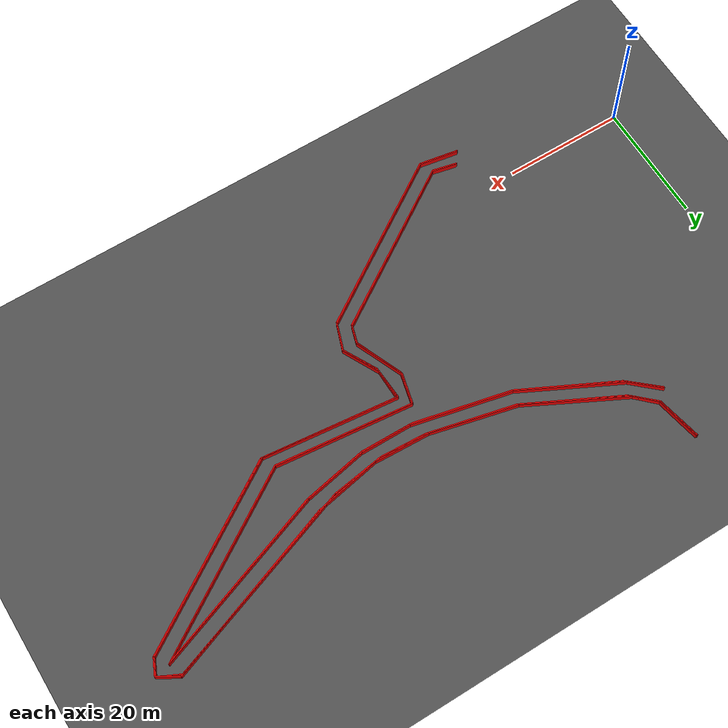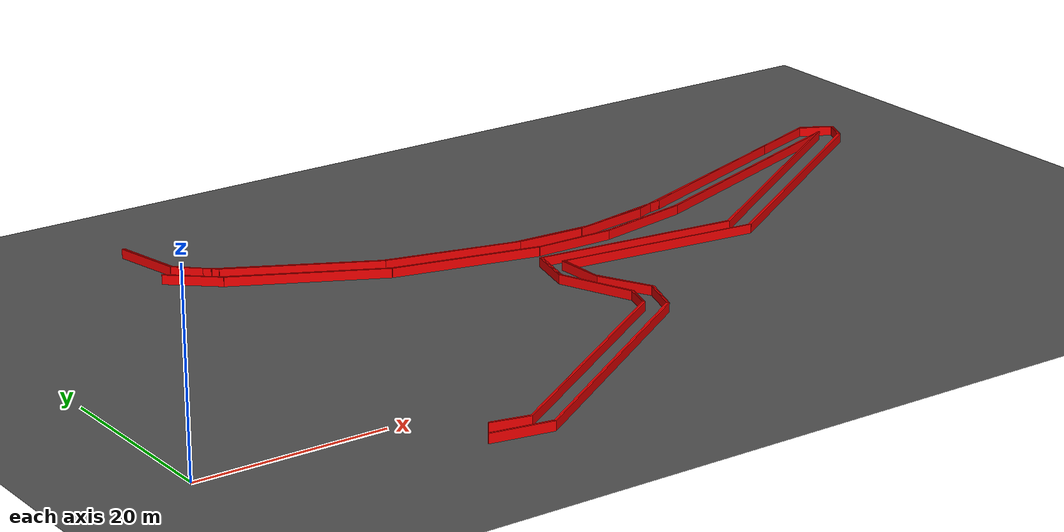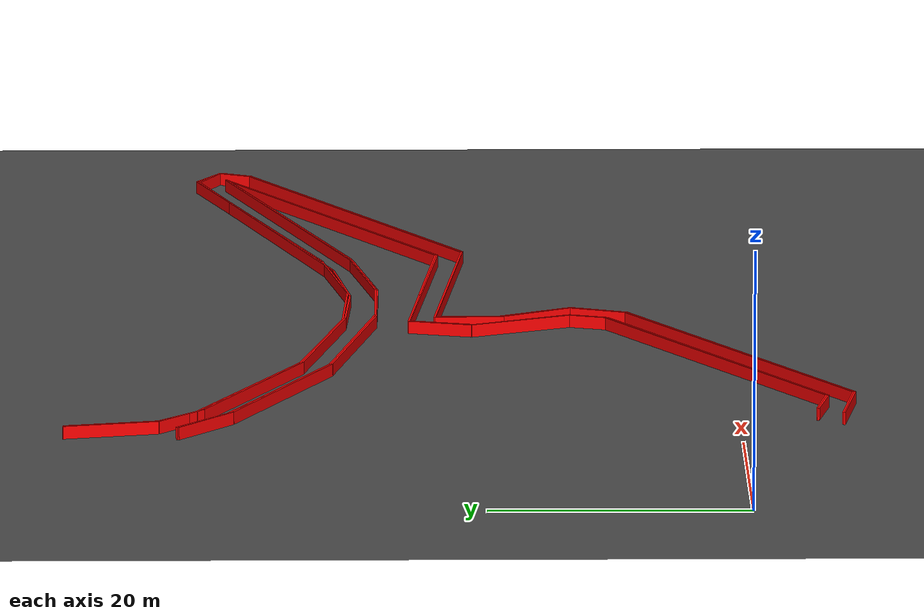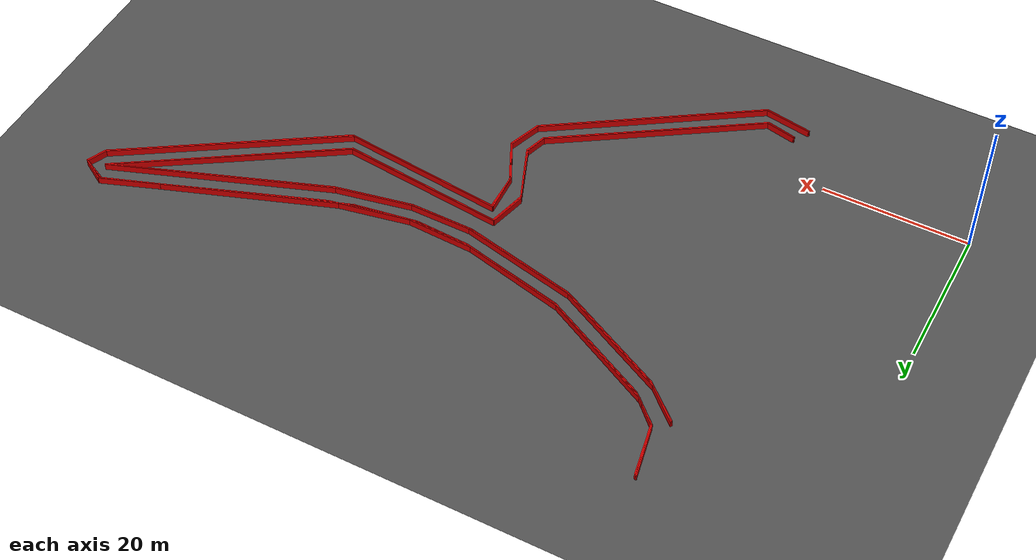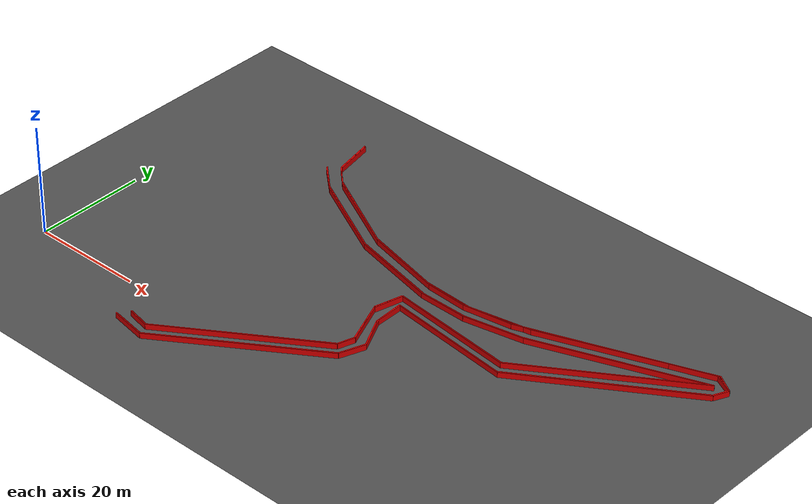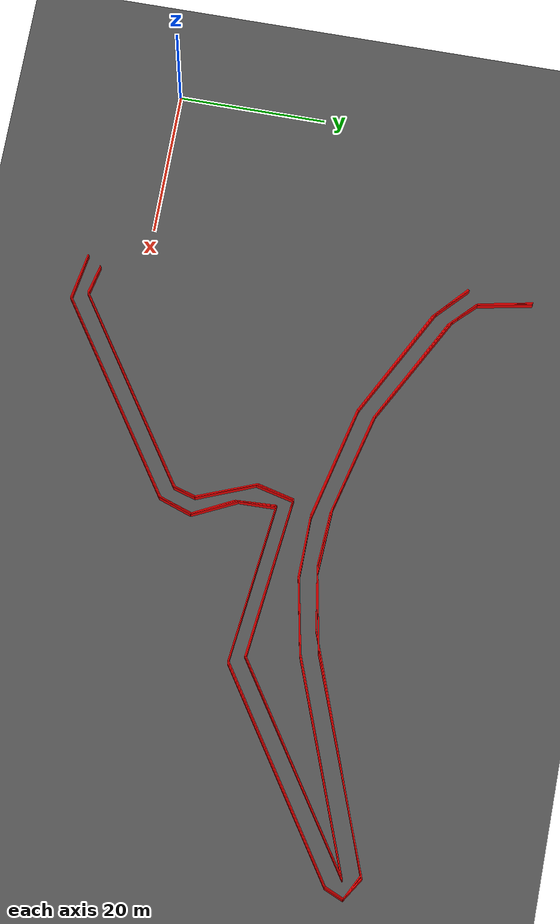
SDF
<sdf version="1.6">
 <world name="track_world">
  <model name="ground_plane">
   <static>true</static>
   <link name="link">
    <collision name="collision">
     <geometry><plane><normal>0 0 1</normal><size>1000 1000</size></plane></geometry>
    </collision>
    <visual name="visual">
     <geometry><plane><normal>0 0 1</normal><size>1000 1000</size></plane></geometry>
     <material><ambient>0.3 0.3 0.3 1</ambient><diffuse>0.3 0.3 0.3 1</diffuse></material>
    </visual>
   </link>
  </model>
  <model name="wall_11">
   <static>true</static>
   <pose>28.64477616560203 -8.553099996878526 0.5 0 0 -0.17349572896278118</pose>
   <link name="link">
    <visual name="visual">
     <geometry><box><size>6.600023978683713 0.15 1.0</size></box></geometry>
     <material><ambient>1 0 0 1</ambient><diffuse>1 0 0 1</diffuse></material>
    </visual>
    <collision name="collision">
     <geometry><box><size>6.600023978683713 0.15 1.0</size></box></geometry>
    </collision>
   </link>
  </model>
  <model name="wall_12">
   <static>true</static>
   <pose>44.86361616560203 -0.5777199968785247 0.5 0 0 0.5826166592180386</pose>
   <link name="link">
    <visual name="visual">
     <geometry><box><size>31.06100448854802 0.15 1.0</size></box></geometry>
     <material><ambient>1 0 0 1</ambient><diffuse>1 0 0 1</diffuse></material>
    </visual>
    <collision name="collision">
     <geometry><box><size>31.06100448854802 0.15 1.0</size></box></geometry>
    </collision>
   </link>
  </model>
  <model name="wall_13">
   <static>true</static>
   <pose>58.63622616560203 10.212500003121477 0.5 0 0 1.2268272070715356</pose>
   <link name="link">
    <visual name="visual">
     <geometry><box><size>4.769733873708263 0.15 1.0</size></box></geometry>
     <material><ambient>1 0 0 1</ambient><diffuse>1 0 0 1</diffuse></material>
    </visual>
    <collision name="collision">
     <geometry><box><size>4.769733873708263 0.15 1.0</size></box></geometry>
    </collision>
   </link>
  </model>
  <model name="wall_14">
   <static>true</static>
   <pose>57.99953616560203 15.406550003121474 0.5 0 0 2.0253117695762928</pose>
   <link name="link">
    <visual name="visual">
     <geometry><box><size>6.564197595837584 0.15 1.0</size></box></geometry>
     <material><ambient>1 0 0 1</ambient><diffuse>1 0 0 1</diffuse></material>
    </visual>
    <collision name="collision">
     <geometry><box><size>6.564197595837584 0.15 1.0</size></box></geometry>
    </collision>
   </link>
  </model>
  <model name="wall_15">
   <static>true</static>
   <pose>56.52509616560203 20.86868000312147 0.5 0 0 1.5841288700890421</pose>
   <link name="link">
    <visual name="visual">
     <geometry><box><size>5.0269467801439855 0.15 1.0</size></box></geometry>
     <material><ambient>1 0 0 1</ambient><diffuse>1 0 0 1</diffuse></material>
    </visual>
    <collision name="collision">
     <geometry><box><size>5.0269467801439855 0.15 1.0</size></box></geometry>
    </collision>
   </link>
  </model>
  <model name="wall_16">
   <static>true</static>
   <pose>67.58339616560203 22.17557000312147 0.5 0 0 -0.1083355006357768</pose>
   <link name="link">
    <visual name="visual">
     <geometry><box><size>22.314439587468907 0.15 1.0</size></box></geometry>
     <material><ambient>1 0 0 1</ambient><diffuse>1 0 0 1</diffuse></material>
    </visual>
    <collision name="collision">
     <geometry><box><size>22.314439587468907 0.15 1.0</size></box></geometry>
    </collision>
   </link>
  </model>
  <model name="wall_17">
   <static>true</static>
   <pose>92.38079616560202 29.782340003121476 0.5 0 0 0.5714610434064565</pose>
   <link name="link">
    <visual name="visual">
     <geometry><box><size>32.58922875092321 0.15 1.0</size></box></geometry>
     <material><ambient>1 0 0 1</ambient><diffuse>1 0 0 1</diffuse></material>
    </visual>
    <collision name="collision">
     <geometry><box><size>32.58922875092321 0.15 1.0</size></box></geometry>
    </collision>
   </link>
  </model>
  <model name="wall_18">
   <static>true</static>
   <pose>106.65605616560202 39.86885000312147 0.5 0 0 1.150132977661859</pose>
   <link name="link">
    <visual name="visual">
     <geometry><box><size>2.789996798062673 0.15 1.0</size></box></geometry>
     <material><ambient>1 0 0 1</ambient><diffuse>1 0 0 1</diffuse></material>
    </visual>
    <collision name="collision">
     <geometry><box><size>2.789996798062673 0.15 1.0</size></box></geometry>
    </collision>
   </link>
  </model>
  <model name="wall_19">
   <static>true</static>
   <pose>105.65075616560202 42.114020003121475 0.5 0 0 2.5887514319972516</pose>
   <link name="link">
    <visual name="visual">
     <geometry><box><size>3.701300476859458 0.15 1.0</size></box></geometry>
     <material><ambient>1 0 0 1</ambient><diffuse>1 0 0 1</diffuse></material>
    </visual>
    <collision name="collision">
     <geometry><box><size>3.701300476859458 0.15 1.0</size></box></geometry>
    </collision>
   </link>
  </model>
  <model name="wall_20">
   <static>true</static>
   <pose>89.76701616560203 37.79123000312148 0.5 0 0 -2.7871921354468716</pose>
   <link name="link">
    <visual name="visual">
     <geometry><box><size>30.51383137459471 0.15 1.0</size></box></geometry>
     <material><ambient>1 0 0 1</ambient><diffuse>1 0 0 1</diffuse></material>
    </visual>
    <collision name="collision">
     <geometry><box><size>30.51383137459471 0.15 1.0</size></box></geometry>
    </collision>
   </link>
  </model>
  <model name="wall_21">
   <static>true</static>
   <pose>70.02962616560202 31.457840003121476 0.5 0 0 -2.952520326028613</pose>
   <link name="link">
    <visual name="visual">
     <geometry><box><size>11.054237435571926 0.15 1.0</size></box></geometry>
     <material><ambient>1 0 0 1</ambient><diffuse>1 0 0 1</diffuse></material>
    </visual>
    <collision name="collision">
     <geometry><box><size>11.054237435571926 0.15 1.0</size></box></geometry>
    </collision>
   </link>
  </model>
  <model name="wall_22">
   <static>true</static>
   <pose>60.07715616560203 30.620090003121476 0.5 0 0 3.0971774383428827</pose>
   <link name="link">
    <visual name="visual">
     <geometry><box><size>9.056631591513487 0.15 1.0</size></box></geometry>
     <material><ambient>1 0 0 1</ambient><diffuse>1 0 0 1</diffuse></material>
    </visual>
    <collision name="collision">
     <geometry><box><size>9.056631591513487 0.15 1.0</size></box></geometry>
    </collision>
   </link>
  </model>
  <model name="wall_23">
   <static>true</static>
   <pose>48.58322616560203 32.496650003121474 0.5 0 0 2.9056840365213215</pose>
   <link name="link">
    <visual name="visual">
     <geometry><box><size>14.337268283240004 0.15 1.0</size></box></geometry>
     <material><ambient>1 0 0 1</ambient><diffuse>1 0 0 1</diffuse></material>
    </visual>
    <collision name="collision">
     <geometry><box><size>14.337268283240004 0.15 1.0</size></box></geometry>
    </collision>
   </link>
  </model>
  <model name="wall_24">
   <static>true</static>
   <pose>33.972866165602035 38.159840003121474 0.5 0 0 2.6605554932996562</pose>
   <link name="link">
    <visual name="visual">
     <geometry><box><size>17.23665280899978 0.15 1.0</size></box></geometry>
     <material><ambient>1 0 0 1</ambient><diffuse>1 0 0 1</diffuse></material>
    </visual>
    <collision name="collision">
     <geometry><box><size>17.23665280899978 0.15 1.0</size></box></geometry>
    </collision>
   </link>
  </model>
  <model name="wall_25">
   <static>true</static>
   <pose>24.891656165602033 43.588460003121476 0.5 0 0 2.356194490192345</pose>
   <link name="link">
    <visual name="visual">
     <geometry><box><size>4.075565496860532 0.15 1.0</size></box></geometry>
     <material><ambient>1 0 0 1</ambient><diffuse>1 0 0 1</diffuse></material>
    </visual>
    <collision name="collision">
     <geometry><box><size>4.075565496860532 0.15 1.0</size></box></geometry>
    </collision>
   </link>
  </model>
  <model name="wall_26">
   <static>true</static>
   <pose>22.74701616560203 48.681980003121474 0.5 0 0 1.7611248664868042</pose>
   <link name="link">
    <visual name="visual">
     <geometry><box><size>7.439521885766578 0.15 1.0</size></box></geometry>
     <material><ambient>1 0 0 1</ambient><diffuse>1 0 0 1</diffuse></material>
    </visual>
    <collision name="collision">
     <geometry><box><size>7.439521885766578 0.15 1.0</size></box></geometry>
    </collision>
   </link>
  </model>
  <model name="wall_33">
   <static>true</static>
   <pose>22.57946616560203 48.715490003121474 0.5 0 0 -1.3734007669450154</pose>
   <link name="link">
    <visual name="visual">
     <geometry><box><size>7.518198331621738 0.15 1.0</size></box></geometry>
     <material><ambient>1 0 0 1</ambient><diffuse>1 0 0 1</diffuse></material>
    </visual>
    <collision name="collision">
     <geometry><box><size>7.518198331621738 0.15 1.0</size></box></geometry>
    </collision>
   </link>
  </model>
  <model name="wall_34">
   <static>true</static>
   <pose>25.12622616560203 43.32038000312148 0.5 0 0 -0.7568345055586886</pose>
   <link name="link">
    <visual name="visual">
     <geometry><box><size>4.978011728270633 0.15 1.0</size></box></geometry>
     <material><ambient>1 0 0 1</ambient><diffuse>1 0 0 1</diffuse></material>
    </visual>
    <collision name="collision">
     <geometry><box><size>4.978011728270633 0.15 1.0</size></box></geometry>
    </collision>
   </link>
  </model>
  <model name="wall_35">
   <static>true</static>
   <pose>34.37498616560203 37.79123000312148 0.5 0 0 -0.47439988279190753</pose>
   <link name="link">
    <visual name="visual">
     <geometry><box><size>16.72548520408302 0.15 1.0</size></box></geometry>
     <material><ambient>1 0 0 1</ambient><diffuse>1 0 0 1</diffuse></material>
    </visual>
    <collision name="collision">
     <geometry><box><size>16.72548520408302 0.15 1.0</size></box></geometry>
    </collision>
   </link>
  </model>
  <model name="wall_36">
   <static>true</static>
   <pose>48.95183616560203 32.295590003121475 0.5 0 0 -0.23056724405605084</pose>
   <link name="link">
    <visual name="visual">
     <geometry><box><size>14.663295982404504 0.15 1.0</size></box></geometry>
     <material><ambient>1 0 0 1</ambient><diffuse>1 0 0 1</diffuse></material>
    </visual>
    <collision name="collision">
     <geometry><box><size>14.663295982404504 0.15 1.0</size></box></geometry>
    </collision>
   </link>
  </model>
  <model name="wall_37">
   <static>true</static>
   <pose>59.84258616560203 30.419030003121478 0.5 0 0 -0.05352026845931472</pose>
   <link name="link">
    <visual name="visual">
     <geometry><box><size>7.517003354528975 0.15 1.0</size></box></geometry>
     <material><ambient>1 0 0 1</ambient><diffuse>1 0 0 1</diffuse></material>
    </visual>
    <collision name="collision">
     <geometry><box><size>7.517003354528975 0.15 1.0</size></box></geometry>
    </collision>
   </link>
  </model>
  <model name="wall_38">
   <static>true</static>
   <pose>67.91849616560202 30.888170003121473 0.5 0 0 0.1538141502330391</pose>
   <link name="link">
    <visual name="visual">
     <geometry><box><size>8.748869966824282 0.15 1.0</size></box></geometry>
     <material><ambient>1 0 0 1</ambient><diffuse>1 0 0 1</diffuse></material>
    </visual>
    <collision name="collision">
     <geometry><box><size>8.748869966824282 0.15 1.0</size></box></geometry>
    </collision>
   </link>
  </model>
  <model name="wall_39">
   <static>true</static>
   <pose>87.99098616560202 37.22156000312147 0.5 0 0 0.34517881924018406</pose>
   <link name="link">
    <visual name="visual">
     <geometry><box><size>33.47385672826483 0.15 1.0</size></box></geometry>
     <material><ambient>1 0 0 1</ambient><diffuse>1 0 0 1</diffuse></material>
    </visual>
    <collision name="collision">
     <geometry><box><size>33.47385672826483 0.15 1.0</size></box></geometry>
    </collision>
   </link>
  </model>
  <model name="wall_40">
   <static>true</static>
   <pose>105.41618616560203 42.04700000312147 0.5 0 0 -0.4636476090008061</pose>
   <link name="link">
    <visual name="visual">
     <geometry><box><size>3.7465318963008967 0.15 1.0</size></box></geometry>
     <material><ambient>1 0 0 1</ambient><diffuse>1 0 0 1</diffuse></material>
    </visual>
    <collision name="collision">
     <geometry><box><size>3.7465318963008967 0.15 1.0</size></box></geometry>
    </collision>
   </link>
  </model>
  <model name="wall_41">
   <static>true</static>
   <pose>106.52201616560203 39.93587000312147 0.5 0 0 -1.9914596759279342</pose>
   <link name="link">
    <visual name="visual">
     <geometry><box><size>2.789996798062673 0.15 1.0</size></box></geometry>
     <material><ambient>1 0 0 1</ambient><diffuse>1 0 0 1</diffuse></material>
    </visual>
    <collision name="collision">
     <geometry><box><size>2.789996798062673 0.15 1.0</size></box></geometry>
    </collision>
   </link>
  </model>
  <model name="wall_42">
   <static>true</static>
   <pose>92.21324616560202 29.849360003121475 0.5 0 0 -2.5712419749654005</pose>
   <link name="link">
    <visual name="visual">
     <geometry><box><size>32.64562017832714 0.15 1.0</size></box></geometry>
     <material><ambient>1 0 0 1</ambient><diffuse>1 0 0 1</diffuse></material>
    </visual>
    <collision name="collision">
     <geometry><box><size>32.64562017832714 0.15 1.0</size></box></geometry>
    </collision>
   </link>
  </model>
  <model name="wall_43">
   <static>true</static>
   <pose>67.38233616560203 22.24259000312147 0.5 0 0 3.0332571529540164</pose>
   <link name="link">
    <visual name="visual">
     <geometry><box><size>22.314439587468907 0.15 1.0</size></box></geometry>
     <material><ambient>1 0 0 1</ambient><diffuse>1 0 0 1</diffuse></material>
    </visual>
    <collision name="collision">
     <geometry><box><size>22.314439587468907 0.15 1.0</size></box></geometry>
    </collision>
   </link>
  </model>
  <model name="wall_44">
   <static>true</static>
   <pose>56.42456616560203 20.66762000312147 0.5 0 0 -1.5226408137349816</pose>
   <link name="link">
    <visual name="visual">
     <geometry><box><size>5.569116012618155 0.15 1.0</size></box></geometry>
     <material><ambient>1 0 0 1</ambient><diffuse>1 0 0 1</diffuse></material>
    </visual>
    <collision name="collision">
     <geometry><box><size>5.569116012618155 0.15 1.0</size></box></geometry>
    </collision>
   </link>
  </model>
  <model name="wall_45">
   <static>true</static>
   <pose>57.932516165602024 15.205490003121476 0.5 0 0 -1.0971987974012865</pose>
   <link name="link">
    <visual name="visual">
     <geometry><box><size>6.024721513265148 0.15 1.0</size></box></geometry>
     <material><ambient>1 0 0 1</ambient><diffuse>1 0 0 1</diffuse></material>
    </visual>
    <collision name="collision">
     <geometry><box><size>6.024721513265148 0.15 1.0</size></box></geometry>
    </collision>
   </link>
  </model>
  <model name="wall_46">
   <static>true</static>
   <pose>58.535696165602026 10.313030003121476 0.5 0 0 -1.906120708109905</pose>
   <link name="link">
    <visual name="visual">
     <geometry><box><size>4.684213781842156 0.15 1.0</size></box></geometry>
     <material><ambient>1 0 0 1</ambient><diffuse>1 0 0 1</diffuse></material>
    </visual>
    <collision name="collision">
     <geometry><box><size>4.684213781842156 0.15 1.0</size></box></geometry>
    </collision>
   </link>
  </model>
  <model name="wall_47">
   <static>true</static>
   <pose>44.83010616560203 -0.4436799968785259 0.5 0 0 -2.5577866680915133</pose>
   <link name="link">
    <visual name="visual">
     <geometry><box><size>31.00506298797666 0.15 1.0</size></box></geometry>
     <material><ambient>1 0 0 1</ambient><diffuse>1 0 0 1</diffuse></material>
    </visual>
    <collision name="collision">
     <geometry><box><size>31.00506298797666 0.15 1.0</size></box></geometry>
    </collision>
   </link>
  </model>
  <model name="wall_48">
   <static>true</static>
   <pose>28.71179616560203 -8.452569996878523 0.5 0 0 2.9747374931900032</pose>
   <link name="link">
    <visual name="visual">
     <geometry><box><size>6.456569196748373 0.15 1.0</size></box></geometry>
     <material><ambient>1 0 0 1</ambient><diffuse>1 0 0 1</diffuse></material>
    </visual>
    <collision name="collision">
     <geometry><box><size>6.456569196748373 0.15 1.0</size></box></geometry>
    </collision>
   </link>
  </model>
  <model name="wall_72">
   <static>true</static>
   <pose>28.77881616560203 -6.5089899968785225 0.5 0 0 -0.22560124383602376</pose>
   <link name="link">
    <visual name="visual">
     <geometry><box><size>4.194509760007717 0.15 1.0</size></box></geometry>
     <material><ambient>1 0 0 1</ambient><diffuse>1 0 0 1</diffuse></material>
    </visual>
    <collision name="collision">
     <geometry><box><size>4.194509760007717 0.15 1.0</size></box></geometry>
    </collision>
   </link>
  </model>
  <model name="wall_73">
   <static>true</static>
   <pose>43.45619616560203 1.2988400031214766 0.5 0 0 0.5800027742076808</pose>
   <link name="link">
    <visual name="visual">
     <geometry><box><size>30.206472370920775 0.15 1.0</size></box></geometry>
     <material><ambient>1 0 0 1</ambient><diffuse>1 0 0 1</diffuse></material>
    </visual>
    <collision name="collision">
     <geometry><box><size>30.206472370920775 0.15 1.0</size></box></geometry>
    </collision>
   </link>
  </model>
  <model name="wall_74">
   <static>true</static>
   <pose>56.55860616560203 11.083760003121476 0.5 0 0 1.2691772805286596</pose>
   <link name="link">
    <visual name="visual">
     <geometry><box><size>3.158484156743547 0.15 1.0</size></box></geometry>
     <material><ambient>1 0 0 1</ambient><diffuse>1 0 0 1</diffuse></material>
    </visual>
    <collision name="collision">
     <geometry><box><size>3.158484156743547 0.15 1.0</size></box></geometry>
    </collision>
   </link>
  </model>
  <model name="wall_75">
   <static>true</static>
   <pose>55.452776165602025 16.44536000312148 0.5 0 0 1.9587764063077708</pose>
   <link name="link">
    <visual name="visual">
     <geometry><box><size>8.326139279017621 0.15 1.0</size></box></geometry>
     <material><ambient>1 0 0 1</ambient><diffuse>1 0 0 1</diffuse></material>
    </visual>
    <collision name="collision">
     <geometry><box><size>8.326139279017621 0.15 1.0</size></box></geometry>
    </collision>
   </link>
  </model>
  <model name="wall_76">
   <static>true</static>
   <pose>54.514496165602026 22.87928000312148 0.5 0 0 1.328875758110491</pose>
   <link name="link">
    <visual name="visual">
     <geometry><box><size>5.315324046189468 0.15 1.0</size></box></geometry>
     <material><ambient>1 0 0 1</ambient><diffuse>1 0 0 1</diffuse></material>
    </visual>
    <collision name="collision">
     <geometry><box><size>5.315324046189468 0.15 1.0</size></box></geometry>
    </collision>
   </link>
  </model>
  <model name="wall_77">
   <static>true</static>
   <pose>66.31001616560204 24.253190003121475 0.5 0 0 -0.107689870832821</pose>
   <link name="link">
    <visual name="visual">
     <geometry><box><size>22.447698449373384 0.15 1.0</size></box></geometry>
     <material><ambient>1 0 0 1</ambient><diffuse>1 0 0 1</diffuse></material>
    </visual>
    <collision name="collision">
     <geometry><box><size>22.447698449373384 0.15 1.0</size></box></geometry>
    </collision>
   </link>
  </model>
  <model name="wall_78">
   <static>true</static>
   <pose>91.10741616560202 31.859960003121472 0.5 0 0 0.5736933341237292</pose>
   <link name="link">
    <visual name="visual">
     <geometry><box><size>32.476567062532936 0.15 1.0</size></box></geometry>
     <material><ambient>1 0 0 1</ambient><diffuse>1 0 0 1</diffuse></material>
    </visual>
    <collision name="collision">
     <geometry><box><size>32.476567062532936 0.15 1.0</size></box></geometry>
    </collision>
   </link>
  </model>
  <model name="wall_79">
   <static>true</static>
   <pose>90.30317616560203 35.41202000312148 0.5 0 0 -2.7922628867934103</pose>
   <link name="link">
    <visual name="visual">
     <geometry><box><size>30.74238886235094 0.15 1.0</size></box></geometry>
     <material><ambient>1 0 0 1</ambient><diffuse>1 0 0 1</diffuse></material>
    </visual>
    <collision name="collision">
     <geometry><box><size>30.74238886235094 0.15 1.0</size></box></geometry>
    </collision>
   </link>
  </model>
  <model name="wall_80">
   <static>true</static>
   <pose>70.73333616560203 29.145650003121474 0.5 0 0 -2.947970660733847</pose>
   <link name="link">
    <visual name="visual">
     <geometry><box><size>10.449318582740228 0.15 1.0</size></box></geometry>
     <material><ambient>1 0 0 1</ambient><diffuse>1 0 0 1</diffuse></material>
    </visual>
    <collision name="collision">
     <geometry><box><size>10.449318582740228 0.15 1.0</size></box></geometry>
    </collision>
   </link>
  </model>
  <model name="wall_81">
   <static>true</static>
   <pose>61.38404616560202 28.17386000312147 0.5 0 0 3.1336563122823273</pose>
   <link name="link">
    <visual name="visual">
     <geometry><box><size>8.444785948193118 0.15 1.0</size></box></geometry>
     <material><ambient>1 0 0 1</ambient><diffuse>1 0 0 1</diffuse></material>
    </visual>
    <collision name="collision">
     <geometry><box><size>8.444785948193118 0.15 1.0</size></box></geometry>
    </collision>
   </link>
  </model>
  <model name="wall_82">
   <static>true</static>
   <pose>49.15289616560203 30.016910003121474 0.5 0 0 2.9193823325248793</pose>
   <link name="link">
    <visual name="visual">
     <geometry><box><size>16.421541224099514 0.15 1.0</size></box></geometry>
     <material><ambient>1 0 0 1</ambient><diffuse>1 0 0 1</diffuse></material>
    </visual>
    <collision name="collision">
     <geometry><box><size>16.421541224099514 0.15 1.0</size></box></geometry>
    </collision>
   </link>
  </model>
  <model name="wall_83">
   <static>true</static>
   <pose>33.43670616560203 35.78063000312147 0.5 0 0 2.6675647945902474</pose>
   <link name="link">
    <visual name="visual">
     <geometry><box><size>17.324896855381272 0.15 1.0</size></box></geometry>
     <material><ambient>1 0 0 1</ambient><diffuse>1 0 0 1</diffuse></material>
    </visual>
    <collision name="collision">
     <geometry><box><size>17.324896855381272 0.15 1.0</size></box></geometry>
    </collision>
   </link>
  </model>
  <model name="wall_84">
   <static>true</static>
   <pose>23.618276165602033 41.67839000312147 0.5 0 0 2.3974933085619496</pose>
   <link name="link">
    <visual name="visual">
     <geometry><box><size>5.739119477167212 0.15 1.0</size></box></geometry>
     <material><ambient>1 0 0 1</ambient><diffuse>1 0 0 1</diffuse></material>
    </visual>
    <collision name="collision">
     <geometry><box><size>5.739119477167212 0.15 1.0</size></box></geometry>
    </collision>
   </link>
  </model>
  <model name="wall_93">
   <static>true</static>
   <pose>23.785826165602032 41.410310003121474 0.5 0 0 -0.7248661436153425</pose>
   <link name="link">
    <visual name="visual">
     <geometry><box><size>6.266997161129084 0.15 1.0</size></box></geometry>
     <material><ambient>1 0 0 1</ambient><diffuse>1 0 0 1</diffuse></material>
    </visual>
    <collision name="collision">
     <geometry><box><size>6.266997161129084 0.15 1.0</size></box></geometry>
    </collision>
   </link>
  </model>
  <model name="wall_94">
   <static>true</static>
   <pose>33.63776616560203 35.512550003121476 0.5 0 0 -0.47076492654201524</pose>
   <link name="link">
    <visual name="visual">
     <geometry><box><size>16.84483405168481 0.15 1.0</size></box></geometry>
     <material><ambient>1 0 0 1</ambient><diffuse>1 0 0 1</diffuse></material>
    </visual>
    <collision name="collision">
     <geometry><box><size>16.84483405168481 0.15 1.0</size></box></geometry>
    </collision>
   </link>
  </model>
  <model name="wall_95">
   <static>true</static>
   <pose>48.95183616560203 29.916380003121475 0.5 0 0 -0.22366209548092889</pose>
   <link name="link">
    <visual name="visual">
     <geometry><box><size>16.014554863598295 0.15 1.0</size></box></geometry>
     <material><ambient>1 0 0 1</ambient><diffuse>1 0 0 1</diffuse></material>
    </visual>
    <collision name="collision">
     <geometry><box><size>16.014554863598295 0.15 1.0</size></box></geometry>
    </collision>
   </link>
  </model>
  <model name="wall_96">
   <static>true</static>
   <pose>61.115966165602025 28.07333000312147 0.5 0 0 -0.015383401780595026</pose>
   <link name="link">
    <visual name="visual">
     <geometry><box><size>8.713631015919821 0.15 1.0</size></box></geometry>
     <material><ambient>1 0 0 1</ambient><diffuse>1 0 0 1</diffuse></material>
    </visual>
    <collision name="collision">
     <geometry><box><size>8.713631015919821 0.15 1.0</size></box></geometry>
    </collision>
   </link>
  </model>
  <model name="wall_97">
   <static>true</static>
   <pose>70.76684616560203 29.045120003121475 0.5 0 0 0.19374149572344615</pose>
   <link name="link">
    <visual name="visual">
     <geometry><box><size>10.791052514467724 0.15 1.0</size></box></geometry>
     <material><ambient>1 0 0 1</ambient><diffuse>1 0 0 1</diffuse></material>
    </visual>
    <collision name="collision">
     <geometry><box><size>10.791052514467724 0.15 1.0</size></box></geometry>
    </collision>
   </link>
  </model>
  <model name="wall_98">
   <static>true</static>
   <pose>90.20264616560203 35.27798000312148 0.5 0 0 0.3520017031001711</pose>
   <link name="link">
    <visual name="visual">
     <geometry><box><size>30.12986946476203 0.15 1.0</size></box></geometry>
     <material><ambient>1 0 0 1</ambient><diffuse>1 0 0 1</diffuse></material>
    </visual>
    <collision name="collision">
     <geometry><box><size>30.12986946476203 0.15 1.0</size></box></geometry>
    </collision>
   </link>
  </model>
  <model name="wall_99">
   <static>true</static>
   <pose>90.90635616560203 31.826450003121472 0.5 0 0 -2.5698771495806247</pose>
   <link name="link">
    <visual name="visual">
     <geometry><box><size>31.9570166652959 0.15 1.0</size></box></geometry>
     <material><ambient>1 0 0 1</ambient><diffuse>1 0 0 1</diffuse></material>
    </visual>
    <collision name="collision"><geometry><box><size>31.9570166652959 0.15 1.0</size></box></geometry></collision>
   </link>
  </model>
  <model name="wall_100">
   <static>true</static>
   <pose>66.24299616560202 24.353720003121474 0.5 0 0 3.0374927154801936</pose>
   <link name="link">
    <visual name="visual">
     <geometry><box><size>22.573903990670292 0.15 1.0</size></box></geometry>
     <material><ambient>1 0 0 1</ambient><diffuse>1 0 0 1</diffuse></material>
    </visual>
    <collision name="collision">
     <geometry><box><size>22.573903990670292 0.15 1.0</size></box></geometry>
    </collision>
   </link>
  </model>
  <model name="wall_101">
   <static>true</static>
   <pose>54.38045616560203 23.01332000312148 0.5 0 0 -1.8189097758915738</pose>
   <link name="link">
    <visual name="visual">
     <geometry><box><size>5.185286768771809 0.15 1.0</size></box></geometry>
     <material><ambient>1 0 0 1</ambient><diffuse>1 0 0 1</diffuse></material>
    </visual>
    <collision name="collision">
     <geometry><box><size>5.185286768771809 0.15 1.0</size></box></geometry>
    </collision>
   </link>
  </model>
  <model name="wall_102">
   <static>true</static>
   <pose>55.318736165602026 16.545890003121478 0.5 0 0 -1.1917519369450038</pose>
   <link name="link">
    <visual name="visual">
     <geometry><box><size>8.512595367642 0.15 1.0</size></box></geometry>
     <material><ambient>1 0 0 1</ambient><diffuse>1 0 0 1</diffuse></material>
    </visual>
    <collision name="collision"><geometry><box><size>8.512595367642 0.15 1.0</size></box></geometry></collision>
   </link>
  </model>
  <model name="wall_103">
   <static>true</static>
   <pose>56.45807616560202 11.150780003121476 0.5 0 0 -1.8643853142036482</pose>
   <link name="link">
    <visual name="visual">
     <geometry><box><size>3.0106828207567844 0.15 1.0</size></box></geometry>
     <material><ambient>1 0 0 1</ambient><diffuse>1 0 0 1</diffuse></material>
    </visual>
    <collision name="collision">
     <geometry><box><size>3.0106828207567844 0.15 1.0</size></box></geometry>
    </collision>
   </link>
  </model>
  <model name="wall_104">
   <static>true</static>
   <pose>43.45619616560202 1.4328800031214755 0.5 0 0 -2.559148979810421</pose>
   <link name="link">
    <visual name="visual">
     <geometry><box><size>30.09444277227275 0.15 1.0</size></box></geometry>
     <material><ambient>1 0 0 1</ambient><diffuse>1 0 0 1</diffuse></material>
    </visual>
    <collision name="collision">
     <geometry><box><size>30.09444277227275 0.15 1.0</size></box></geometry>
    </collision>
   </link>
  </model>
  <model name="wall_105">
   <static>true</static>
   <pose>28.87934616560203 -6.408459996878523 0.5 0 0 2.9282240114379854</pose>
   <link name="link">
    <visual name="visual">
     <geometry><box><size>4.114504031788036 0.15 1.0</size></box></geometry>
     <material><ambient>1 0 0 1</ambient><diffuse>1 0 0 1</diffuse></material>
    </visual>
    <collision name="collision">
     <geometry><box><size>4.114504031788036 0.15 1.0</size></box></geometry>
    </collision>
   </link>
  </model>
 </world>
</sdf>
